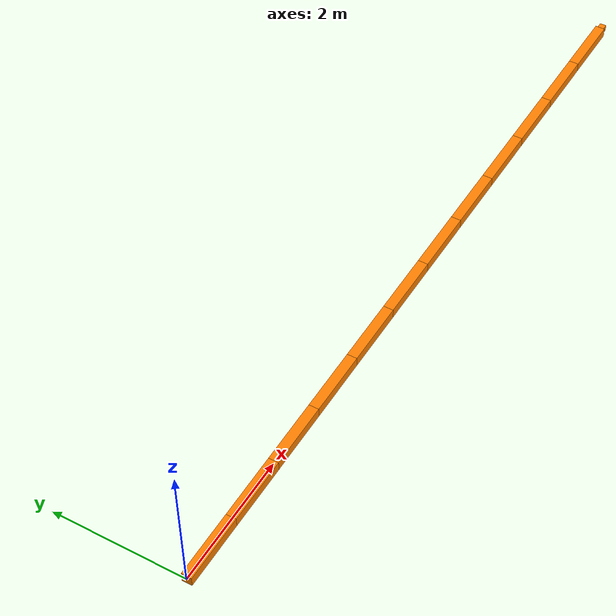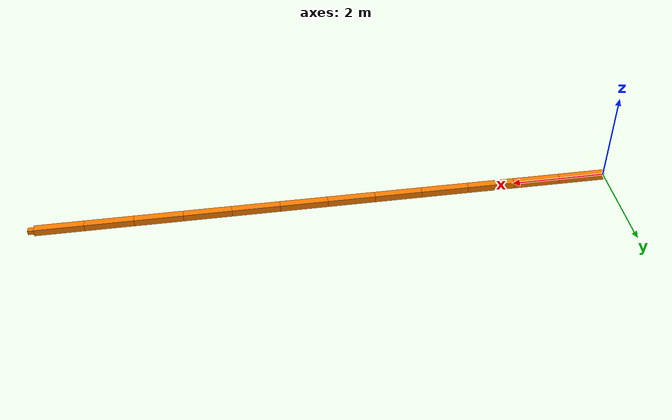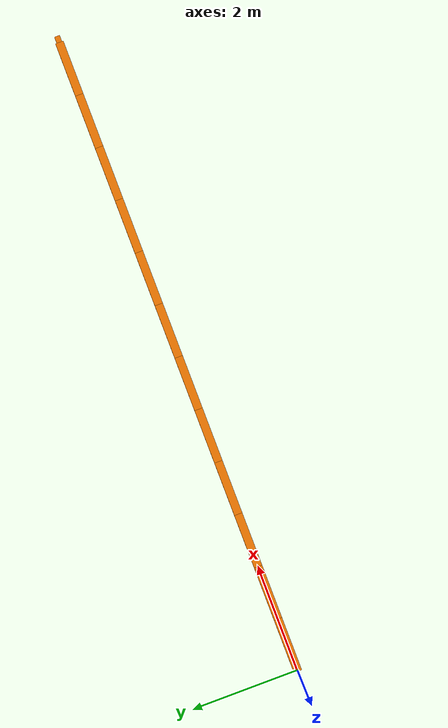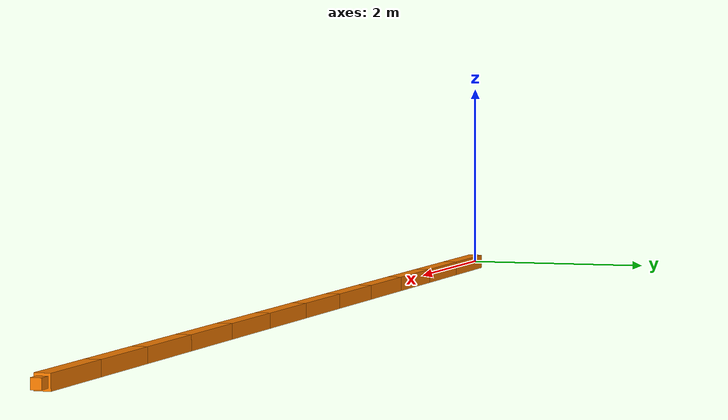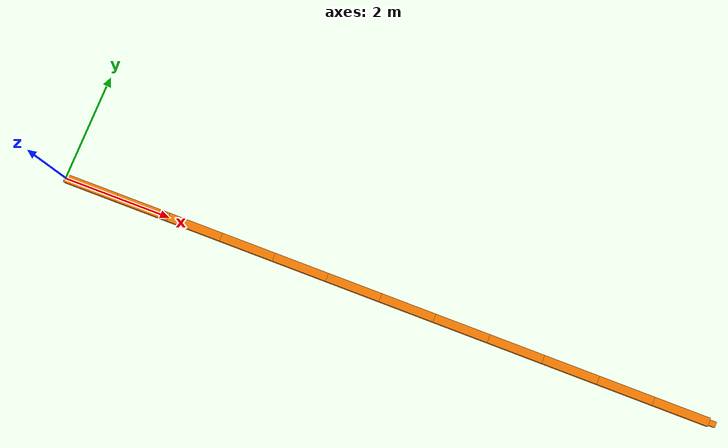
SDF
<?xml version="1.0" ?>
<sdf version='1.6'>
  <model name='12DOFManipulator'>
    <link name="link1">
      <pose frame=''>0 0 0 0 0 0</pose>
      <inertial>
        <pose frame='link1'>0.5 0 0 0 0 0</pose>
        <mass>1.0</mass>
        <inertia>
          <ixx>0.005</ixx>
          <ixy>0.</ixy>
          <ixz>0.0</ixz>
          <iyy>0.006</iyy>
          <izz>0.003</izz>
        </inertia>
      </inertial>
      <visual name='visual'>
        <pose frame=''>0.5 0 0 0 0 0</pose>
        <geometry>
          <box>
            <size>1 0.15 0.15</size>
          </box>
        </geometry>
        <material>
          <ambient>1.0 0.5019607843137254902 0 1.0</ambient>
        </material>
      </visual>
      <self_collide>0</self_collide>
    </link>

    <link name="link2">
      <pose frame=''>1 0 0 0 0 0</pose>
      <inertial>
        <pose frame='link2'>0.5 0 0 0 0 0</pose>
        <mass>1.0</mass>
        <inertia>
          <ixx>0.005</ixx>
          <ixy>0.</ixy>
          <ixz>0.0</ixz>
          <iyy>0.006</iyy>
          <izz>0.003</izz>
        </inertia>
      </inertial>
      <visual name='visual'>
        <pose frame=''>0.5 0 0 0 0 0</pose>
        <geometry>
          <box>
            <size>1 0.15 0.15</size>
          </box>
        </geometry>
        <material>
          <ambient>1.0 0.5019607843137254902 0 1.0</ambient>
        </material>
      </visual>
      <self_collide>0</self_collide>
    </link>

    <link name="link3">
      <pose frame=''>2 0 0 0 0 0</pose>
      <inertial>
        <pose frame='link3'>0.5 0 0 0 0 0</pose>
        <mass>1.0</mass>
        <inertia>
          <ixx>0.005</ixx>
          <ixy>0.</ixy>
          <ixz>0.0</ixz>
          <iyy>0.006</iyy>
          <izz>0.003</izz>
        </inertia>
      </inertial>
      <visual name='visual'>
        <pose frame=''>0.5 0 0 0 0 0</pose>
        <geometry>
          <box>
            <size>1 0.15 0.15</size>
          </box>
        </geometry>
        <material>
          <ambient>1.0 0.5019607843137254902 0 1.0</ambient>
        </material>
      </visual>
      <self_collide>0</self_collide>
    </link>

    <link name="link4">
      <pose frame=''>3 0 0 0 0 0</pose>
      <inertial>
        <pose frame='link4'>0.5 0 0 0 0 0</pose>
        <mass>1.0</mass>
        <inertia>
          <ixx>0.005</ixx>
          <ixy>0.</ixy>
          <ixz>0.0</ixz>
          <iyy>0.006</iyy>
          <izz>0.003</izz>
        </inertia>
      </inertial>
      <visual name='visual'>
        <pose frame=''>0.5 0 0 0 0 0</pose>
        <geometry>
          <box>
            <size>1 0.15 0.15</size>
          </box>
        </geometry>
        <material>
          <ambient>1.0 0.5019607843137254902 0 1.0</ambient>
        </material>
      </visual>
      <self_collide>0</self_collide>
    </link>

    <link name="link5">
      <pose frame=''>4 0 0 0 0 0</pose>
      <inertial>
        <pose frame='link5'>0.5 0 0 0 0 0</pose>
        <mass>1.0</mass>
        <inertia>
          <ixx>0.005</ixx>
          <ixy>0.</ixy>
          <ixz>0.0</ixz>
          <iyy>0.006</iyy>
          <izz>0.003</izz>
        </inertia>
      </inertial>
      <collision name='collision'>
        <pose frame=''>0.5 0 0 0 0 0</pose>
        <geometry>
          <box>
            <size>1 0.15 0.15</size>
          </box>
        </geometry>
      </collision>
      <visual name='visual'>
        <pose frame=''>0.5 0 0 0 0 0</pose>
        <geometry>
          <box>
            <size>1 0.15 0.15</size>
          </box>
        </geometry>
        <material>
          <ambient>1.0 0.5019607843137254902 0 1.0</ambient>
        </material>
      </visual>
      <self_collide>0</self_collide>
    </link>

    <link name="link6">
      <pose frame=''>5 0 0 0 0 0</pose>
      <inertial>
        <pose frame='link6'>0.5 0 0 0 0 0</pose>
        <mass>1.0</mass>
        <inertia>
          <ixx>0.005</ixx>
          <ixy>0.</ixy>
          <ixz>0.0</ixz>
          <iyy>0.006</iyy>
          <izz>0.003</izz>
        </inertia>
      </inertial>
      <collision name='collision'>
        <pose frame=''>0.5 0 0 0 0 0</pose>
        <geometry>
          <box>
            <size>1 0.15 0.15</size>
          </box>
        </geometry>
      </collision>
      <visual name='visual'>
        <pose frame=''>0.5 0 0 0 0 0</pose>
        <geometry>
          <box>
            <size>1 0.15 0.15</size>
          </box>
        </geometry>
        <material>
          <ambient>1.0 0.5019607843137254902 0 1.0</ambient>
        </material>
      </visual>
      <self_collide>0</self_collide>
    </link>

    <link name="link7">
      <pose frame=''>6 0 0 0 0 0</pose>
      <inertial>
        <pose frame='link7'>0.5 0 0 0 0 0</pose>
        <mass>1.0</mass>
        <inertia>
          <ixx>0.005</ixx>
          <ixy>0.</ixy>
          <ixz>0.0</ixz>
          <iyy>0.006</iyy>
          <izz>0.003</izz>
        </inertia>
      </inertial>
      <collision name='collision'>
        <pose frame=''>0.5 0 0 0 0 0</pose>
        <geometry>
          <box>
            <size>1 0.15 0.15</size>
          </box>
        </geometry>
      </collision>
      <visual name='visual'>
        <pose frame=''>0.5 0 0 0 0 0</pose>
        <geometry>
          <box>
            <size>1 0.15 0.15</size>
          </box>
        </geometry>
        <material>
          <ambient>1.0 0.5019607843137254902 0 1.0</ambient>
        </material>
      </visual>
      <self_collide>0</self_collide>
    </link>

    <link name="link8">
      <pose frame=''>7 0 0 0 0 0</pose>
      <inertial>
        <pose frame='link8'>0.5 0 0 0 0 0</pose>
        <mass>1.0</mass>
        <inertia>
          <ixx>0.005</ixx>
          <ixy>0.</ixy>
          <ixz>0.0</ixz>
          <iyy>0.006</iyy>
          <izz>0.003</izz>
        </inertia>
      </inertial>
      <collision name='collision'>
        <pose frame=''>0.5 0 0 0 0 0</pose>
        <geometry>
          <box>
            <size>1 0.15 0.15</size>
          </box>
        </geometry>
      </collision>
      <visual name='visual'>
        <pose frame=''>0.5 0 0 0 0 0</pose>
        <geometry>
          <box>
            <size>1 0.15 0.15</size>
          </box>
        </geometry>
        <material>
          <ambient>1.0 0.5019607843137254902 0 1.0</ambient>
        </material>
      </visual>
      <self_collide>0</self_collide>
    </link>

    <link name="link9">
      <pose frame=''>8 0 0 0 0 0</pose>
      <inertial>
        <pose frame='link9'>0.5 0 0 0 0 0</pose>
        <mass>1.0</mass>
        <inertia>
          <ixx>0.005</ixx>
          <ixy>0.</ixy>
          <ixz>0.0</ixz>
          <iyy>0.006</iyy>
          <izz>0.003</izz>
        </inertia>
      </inertial>
      <collision name='collision'>
        <pose frame=''>0.5 0 0 0 0 0</pose>
        <geometry>
          <box>
            <size>1 0.15 0.15</size>
          </box>
        </geometry>
      </collision>
      <visual name='visual'>
        <pose frame=''>0.5 0 0 0 0 0</pose>
        <geometry>
          <box>
            <size>1 0.15 0.15</size>
          </box>
        </geometry>
        <material>
          <ambient>1.0 0.5019607843137254902 0 1.0</ambient>
        </material>
      </visual>
      <self_collide>0</self_collide>
    </link>

    <link name="link10">
      <pose frame=''>9 0 0 0 0 0</pose>
      <inertial>
        <pose frame='link10'>0.5 0 0 0 0 0</pose>
        <mass>1.0</mass>
        <inertia>
          <ixx>0.005</ixx>
          <ixy>0.</ixy>
          <ixz>0.0</ixz>
          <iyy>0.006</iyy>
          <izz>0.003</izz>
        </inertia>
      </inertial>
      <collision name='collision'>
        <pose frame=''>0.5 0 0 0 0 0</pose>
        <geometry>
          <box>
            <size>1 0.15 0.15</size>
          </box>
        </geometry>
      </collision>
      <visual name='visual'>
        <pose frame=''>0.5 0 0 0 0 0</pose>
        <geometry>
          <box>
            <size>1 0.15 0.15</size>
          </box>
        </geometry>
        <material>
          <ambient>1.0 0.5019607843137254902 0 1.0</ambient>
        </material>
      </visual>
      <self_collide>0</self_collide>
    </link>

    <link name="link11">
      <pose frame=''>10 0 0 0 0 0</pose>
      <inertial>
        <pose frame='link11'>0.5 0 0 0 0 0</pose>
        <mass>1.0</mass>
        <inertia>
          <ixx>0.005</ixx>
          <ixy>0.</ixy>
          <ixz>0.0</ixz>
          <iyy>0.006</iyy>
          <izz>0.003</izz>
        </inertia>
      </inertial>
      <collision name='collision'>
        <pose frame=''>0.5 0 0 0 0 0</pose>
        <geometry>
          <box>
            <size>1 0.15 0.15</size>
          </box>
        </geometry>
      </collision>
      <visual name='visual'>
        <pose frame=''>0.5 0 0 0 0 0</pose>
        <geometry>
          <box>
            <size>1 0.15 0.15</size>
          </box>
        </geometry>
        <material>
          <ambient>1.0 0.5019607843137254902 0 1.0</ambient>
        </material>
      </visual>
      <self_collide>0</self_collide>
    </link>

     <link name="link12">
      <pose frame=''>11 0 0 0 0 0</pose>
      <inertial>
        <pose frame='link12'>0.5 0 0 0 0 0</pose>
        <mass>1.0</mass>
        <inertia>
          <ixx>0.005</ixx>
          <ixy>0.</ixy>
          <ixz>0.0</ixz>
          <iyy>0.006</iyy>
          <izz>0.003</izz>
        </inertia>
      </inertial>
      <collision name='collision'>
        <pose frame=''>0.5 0 0 0 0 0</pose>
        <geometry>
          <box>
            <size>1 0.15 0.15</size>
          </box>
        </geometry>
      </collision>
      <visual name='visual'>
        <pose frame=''>0.5 0 0 0 0 0</pose>
        <geometry>
          <box>
            <size>1 0.15 0.15</size>
          </box>
        </geometry>
        <material>
          <ambient>1.0 0.5019607843137254902 0 1.0</ambient>
        </material>
      </visual>
      <self_collide>0</self_collide>
    </link>

    <link name="endEffector">
      <pose frame=''>12.0625 0 0 0 0 0</pose>
      <inertial>
        <pose frame='endEffector'>0 0 0 0 0 0</pose>
        <mass>1.0</mass>
        <inertia>
          <ixx>0.005</ixx>
          <ixy>0.</ixy>
          <ixz>0.0</ixz>
          <iyy>0.006</iyy>
          <izz>0.003</izz>
        </inertia>
      </inertial>
      <collision name='endEffector_collision'>
        <pose frame=''>0 0 0 0 0 0</pose>
        <geometry>
          <box>
            <size>0.125 0.1 0.1</size>
          </box>
        </geometry>
      </collision>
      <visual name='endEffector_visual'>
        <pose frame=''>0 0 0 0 0 0</pose>
        <geometry>
          <box>
            <size>0.125 0.1 0.1</size>
          </box>
        </geometry>
        <material>
          <ambient>1.0 0.5019607843137254902 0 1.0</ambient>
        </material>
      </visual>
      <self_collide>0</self_collide>
    </link>

    <joint name="joint1" type="revolute">
      <parent>world</parent>
      <child>link1</child>
      <axis>
        <xyz>0 0 1</xyz>
        <limit>
          <lower>-1000</lower>
          <upper>1000</upper>
          <velocity>6</velocity>
          <effort>50</effort>
        </limit>
        <dynamics>
          <damping>1.0</damping>
          <friction>0.2</friction>
        </dynamics>
        <use_parent_model_frame>1</use_parent_model_frame>
      </axis>
      <physics>
        <ode>
          <implicit_spring_damper>1</implicit_spring_damper>
          <bounce>0</bounce>
          <limit>
            <erp>0.9</erp>
            <cfm>0</cfm>
          </limit>
        </ode>
      </physics>
    </joint>

    <joint name="joint2" type="revolute">
      <parent>link1</parent>
      <child>link2</child>
      <axis>
        <xyz>0 1 0</xyz>
        <limit>
          <lower>-1000</lower>
          <upper>1000</upper>
          <velocity>2</velocity>
          <effort>30</effort>
        </limit>
        <dynamics>
          <damping>1.0</damping>
          <friction>0.2</friction>
        </dynamics>
        <use_parent_model_frame>1</use_parent_model_frame>
      </axis>
      <physics>
        <ode>
          <implicit_spring_damper>1</implicit_spring_damper>
          <bounce>0</bounce>
          <limit>
            <erp>0.9</erp>
            <cfm>0</cfm>
          </limit>
        </ode>
      </physics>
    </joint>

    <joint name="joint3" type="revolute">
      <parent>link2</parent>
      <child>link3</child>
      <axis>
        <xyz>0 1 0</xyz>
        <limit>
          <lower>-1000</lower>
          <upper>1000</upper>
          <velocity>2</velocity>
          <effort>40</effort>
        </limit>
        <dynamics>
          <damping>1.0</damping>
          <friction>0.2</friction>
        </dynamics>
        <use_parent_model_frame>1</use_parent_model_frame>
      </axis>
      <physics>
        <ode>
          <implicit_spring_damper>1</implicit_spring_damper>
          <bounce>0</bounce>
          <limit>
            <erp>0.9</erp>
            <cfm>0</cfm>
          </limit>
        </ode>
      </physics>
    </joint>

    <joint name="joint4" type="revolute">
      <parent>link3</parent>
      <child>link4</child>
      <axis>
        <xyz>0 0 1</xyz>
        <limit>
          <lower>-1000</lower>
          <upper>1000</upper>
          <velocity>2</velocity>
          <effort>5</effort>
        </limit>
        <dynamics>
          <damping>1.0</damping>
          <friction>0.2</friction>
        </dynamics>
        <use_parent_model_frame>1</use_parent_model_frame>
      </axis>
      <physics>
        <ode>
          <implicit_spring_damper>1</implicit_spring_damper>
          <bounce>0</bounce>
          <limit>
            <erp>0.9</erp>
            <cfm>0</cfm>
          </limit>
        </ode>
      </physics>
    </joint>

    <joint name="joint5" type="revolute">
      <parent>link4</parent>
      <child>link5</child>
      <axis>
        <xyz>0 0 1</xyz>
        <limit>
          <lower>-1000</lower>
          <upper>1000</upper>
          <velocity>2</velocity>
          <effort>5</effort>
        </limit>
        <dynamics>
          <damping>1.0</damping>
          <friction>0.2</friction>
        </dynamics>
        <use_parent_model_frame>1</use_parent_model_frame>
      </axis>
      <physics>
        <ode>
          <implicit_spring_damper>1</implicit_spring_damper>
          <bounce>0</bounce>
          <limit>
            <erp>0.9</erp>
            <cfm>0</cfm>
          </limit>
        </ode>
      </physics>
    </joint>

    <joint name="joint6" type="revolute">
      <parent>link5</parent>
      <child>link6</child>
      <axis>
        <xyz>0 1 0</xyz>
        <limit>
          <lower>-1000</lower>
          <upper>1000</upper>
          <velocity>2</velocity>
          <effort>5</effort>
        </limit>
        <dynamics>
          <damping>1.0</damping>
          <friction>0.2</friction>
        </dynamics>
        <use_parent_model_frame>1</use_parent_model_frame>
      </axis>
      <physics>
        <ode>
          <implicit_spring_damper>1</implicit_spring_damper>
          <bounce>0</bounce>
          <limit>
            <erp>0.9</erp>
            <cfm>0</cfm>
          </limit>
        </ode>
      </physics>
    </joint>

    <joint name="joint7" type="revolute">
      <parent>link6</parent>
      <child>link7</child>
      <axis>
        <xyz>0 0 1</xyz>
        <limit>
          <lower>-1000</lower>
          <upper>1000</upper>
          <velocity>2</velocity>
          <effort>5</effort>
        </limit>
        <dynamics>
          <damping>1.0</damping>
          <friction>0.2</friction>
        </dynamics>
        <use_parent_model_frame>1</use_parent_model_frame>
      </axis>
      <physics>
        <ode>
          <implicit_spring_damper>1</implicit_spring_damper>
          <bounce>0</bounce>
          <limit>
            <erp>0.9</erp>
            <cfm>0</cfm>
          </limit>
        </ode>
      </physics>
    </joint>

    <joint name="joint8" type="revolute">
      <parent>link7</parent>
      <child>link8</child>
      <axis>
        <xyz>0 0 1</xyz>
        <limit>
          <lower>-1000</lower>
          <upper>1000</upper>
          <velocity>2</velocity>
          <effort>5</effort>
        </limit>
        <dynamics>
          <damping>1.0</damping>
          <friction>0.2</friction>
        </dynamics>
        <use_parent_model_frame>1</use_parent_model_frame>
      </axis>
      <physics>
        <ode>
          <implicit_spring_damper>1</implicit_spring_damper>
          <bounce>0</bounce>
          <limit>
            <erp>0.9</erp>
            <cfm>0</cfm>
          </limit>
        </ode>
      </physics>
    </joint>

    <joint name="joint9" type="revolute">
      <parent>link8</parent>
      <child>link9</child>
      <axis>
        <xyz>0 0 1</xyz>
        <limit>
          <lower>-1000</lower>
          <upper>1000</upper>
          <velocity>2</velocity>
          <effort>5</effort>
        </limit>
        <dynamics>
          <damping>1.0</damping>
          <friction>0.2</friction>
        </dynamics>
        <use_parent_model_frame>1</use_parent_model_frame>
      </axis>
      <physics>
        <ode>
          <implicit_spring_damper>1</implicit_spring_damper>
          <bounce>0</bounce>
          <limit>
            <erp>0.9</erp>
            <cfm>0</cfm>
          </limit>
        </ode>
      </physics>
    </joint>

    <joint name="joint10" type="revolute">
      <parent>link9</parent>
      <child>link10</child>
      <axis>
        <xyz>0 0 1</xyz>
        <limit>
          <lower>-1000</lower>
          <upper>1000</upper>
          <velocity>2</velocity>
          <effort>5</effort>
        </limit>
        <dynamics>
          <damping>1.0</damping>
          <friction>0.2</friction>
        </dynamics>
        <use_parent_model_frame>1</use_parent_model_frame>
      </axis>
      <physics>
        <ode>
          <implicit_spring_damper>1</implicit_spring_damper>
          <bounce>0</bounce>
          <limit>
            <erp>0.9</erp>
            <cfm>0</cfm>
          </limit>
        </ode>
      </physics>
    </joint>

    <joint name="joint11" type="revolute">
      <parent>link10</parent>
      <child>link11</child>
      <axis>
        <xyz>0 0 1</xyz>
        <limit>
          <lower>-1000</lower>
          <upper>1000</upper>
          <velocity>2</velocity>
          <effort>5</effort>
        </limit>
        <dynamics>
          <damping>1.0</damping>
          <friction>0.2</friction>
        </dynamics>
        <use_parent_model_frame>1</use_parent_model_frame>
      </axis>
      <physics>
        <ode>
          <implicit_spring_damper>1</implicit_spring_damper>
          <bounce>0</bounce>
          <limit>
            <erp>0.9</erp>
            <cfm>0</cfm>
          </limit>
        </ode>
      </physics>
    </joint>

    <joint name="joint12" type="revolute">
      <parent>link11</parent>
      <child>link12</child>
      <axis>
        <xyz>0 0 1</xyz>
        <limit>
          <lower>-1000</lower>
          <upper>1000</upper>
          <velocity>2</velocity>
          <effort>5</effort>
        </limit>
        <dynamics>
          <damping>1.0</damping>
          <friction>0.2</friction>
        </dynamics>
        <use_parent_model_frame>1</use_parent_model_frame>
      </axis>
      <physics>
        <ode>
          <implicit_spring_damper>1</implicit_spring_damper>
          <bounce>0</bounce>
          <limit>
            <erp>0.9</erp>
            <cfm>0</cfm>
          </limit>
        </ode>
      </physics>
    </joint>

    <joint name="joint13" type="fixed">
      <parent>link12</parent>
      <child>endEffector</child>
    </joint>
  </model>

</sdf>
